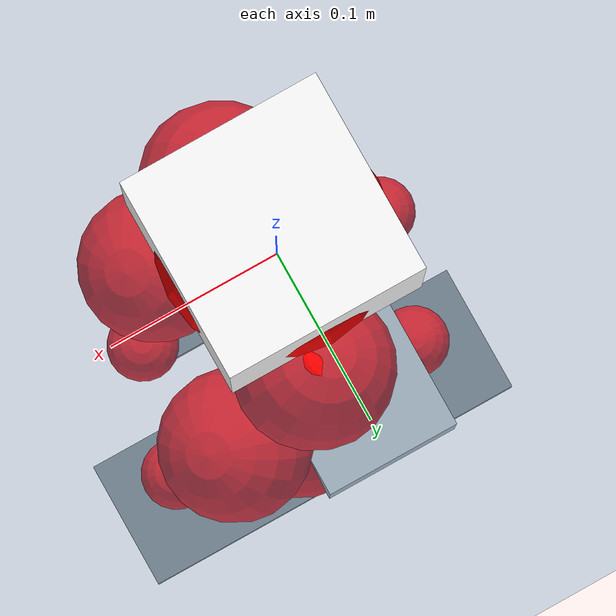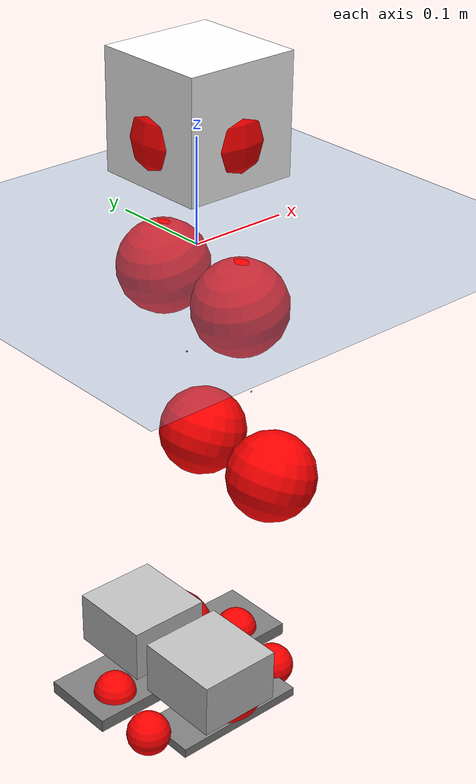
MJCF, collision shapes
<mujoco model="pi_12dof_release_v1">
  <compiler angle="radian" assetdir="assets" balanceinertia="true" inertiafromgeom="false"/>

  <option timestep="0.005" density="1.2" viscosity="2e-05"/>

  <size nkey="1"/>

  <visual>
    <quality shadowsize="8192"/>
    <map shadowclip="0.5"/>
  </visual>

  <default>
    <default class="/">
      <joint armature="0.01" damping="0.01" frictionloss="0.01"/>
      <geom contype="0" conaffinity="0" group="1" solref="-1000 -80"/>
      <site size="0.01 0.005 0.005" group="5"/>
      <general forcelimited="true" biastype="affine" gainprm="20" biasprm="0 -20 -0.5"/>
      <default class="foot">
        <geom size="0.0845 0.036 0.005" type="box" condim="6" group="4" priority="1" friction="0.9 0.2 0.2" solimp="0.015 1 0.005"/>
      </default>
      <default class="reward_collision_sphere">
        <geom group="5" rgba="1 0 0 1"/>
      </default>
    </default>
  </default>

  <asset>
    <texture type="skybox" colorspace="auto" name="//unnamed_texture_0" builtin="gradient" rgb1="0.95 0.95 0.95" rgb2="0.95 0.95 0.95" width="100" height="600"/>
    <texture type="2d" colorspace="auto" name="texplane" builtin="checker" rgb1="0.345 0.575 0.748" rgb2="0.345 0.575 0.748" markrgb="1 1 1" width="512" height="512"/>
    <material name="MatPlane" class="/" texture="texplane" texuniform="true" texrepeat="2 2" specular="0.9"/>
    <mesh name="baselink_1" class="/" file="baselink_1.STL"/>
    <mesh name="r_hip_pitch_link" class="/" file="r_hip_pitch_link.STL"/>
    <mesh name="r_hip_roll_link" class="/" file="r_hip_roll_link.STL"/>
    <mesh name="r_thigh_link" class="/" file="r_thigh_link.STL"/>
    <mesh name="r_calf_link" class="/" file="r_calf_link.STL"/>
    <mesh name="r_ankle_pitch_link" class="/" file="r_ankle_pitch_link.STL"/>
    <mesh name="r_ankle_roll_link" class="/" file="r_ankle_roll_link.STL"/>
    <mesh name="l_hip_pitch_link" class="/" file="l_hip_pitch_link.STL"/>
    <mesh name="l_hip_roll_link" class="/" file="l_hip_roll_link.STL"/>
    <mesh name="l_thigh_link" class="/" file="l_thigh_link.STL"/>
    <mesh name="l_calf_link" class="/" file="l_calf_link.STL"/>
    <mesh name="l_ankle_pitch_link" class="/" file="l_ankle_pitch_link.STL"/>
    <mesh name="l_ankle_roll_link" class="/" file="l_ankle_roll_link.STL"/>
  </asset>

  <worldbody>
    <geom name="floor" class="/" size="100 100 0.125" type="plane" group="0" material="MatPlane"/>
    <light name="toplight_shadow" class="/" pos="0 0 5" dir="0.0990148 0.0990148 -0.990148" type="directional" ambient="0.04 0.04 0.04" diffuse="0.55 0.55 0.55" specular="0.12 0.12 0.12"/>
    <light name="toplight_fill" class="/" pos="0 0 5" dir="0.0990148 0.0990148 -0.990148" type="directional" castshadow="false" ambient="0.04 0.04 0.04" diffuse="0.3 0.3 0.3" specular="0.08 0.08 0.08"/>
    <body name="trunk" pos="0.00213168 0.000726772 0.00271453" quat="0.999999 -0.000361779 0.000850909 0.000626329">
      <inertial pos="0.00680682 0.00508441 0.0600628" quat="0.693733 0.00685058 0.0120635 0.720099" mass="3.04832" diaginertia="0.0260174 0.000808635 0.0272615"/>
      <joint name="//unnamed_joint_0" type="free"/>
      <geom name="//unnamed_geom_1" class="/" type="mesh" density="0" rgba="1 1 1 1" mesh="baselink_1"/>
      <geom name="//unnamed_geom_2" class="/" size="0.0557515 0.0557515 0.0557515" pos="0 0 0.118786" type="box" rgba="1 1 1 1"/>
      <geom name="//unnamed_geom_3" class="reward_collision_sphere" size="0.0613267" pos="0 0 0.103938"/>
      <site name="imu" class="/" pos="0.0364027 -0.0112884 -0.0259656" size="0.0111503"/>
      <camera name="track" class="/" pos="0 -1.25315 0" quat="0.707107 0.707107 0 0" mode="trackcom"/>
      <camera name="ego_camera" class="/" pos="0.0925265 0 0.267269" quat="-0.5 -0.5 0.5 0.5"/>
      <body name="r_hip_pitch_link" pos="0.00232023 -0.0149295 -0.0490107" quat="0.992171 7.61447e-06 -0.124883 5.92727e-05">
        <inertial pos="-0.00424678 -0.034348 -0.00170943" quat="-0.0261714 0.705763 -0.0318008 0.70725" mass="0.539442" diaginertia="0.000327691 9.24684e-06 0.000596496"/>
        <joint name="r_hip_pitch_joint" class="/" pos="0 0 0" axis="-0.0355657 -0.999235 0.0162849" range="-1.75901 1.37229" armature="0.0112061" damping="0.0420975" frictionloss="0.0106582"/>
        <geom name="//unnamed_geom_4" class="/" type="mesh" density="0" rgba="0.75294 0.75294 0.75294 1" mesh="r_hip_pitch_link"/>
        <geom name="//unnamed_geom_5" class="/" size="0.000557515 0.000557515 0.000557515" type="box" rgba="0.75294 0.75294 0.75294 1"/>
        <body name="r_hip_roll_link" pos="0.00190114 -0.0375098 0.00140864" quat="1 -1.52879e-05 -3.36694e-05 -1.55507e-05">
          <inertial pos="-0.00159434 0.00023228 -0.0961327" quat="0.702801 -0.0745019 -0.0864745 0.70217" mass="0.539197" diaginertia="0.00104801 2.74356e-05 0.000923374"/>
          <joint name="r_hip_roll_joint" class="/" pos="0 0 0" axis="-0.999374 -0.0349152 0.00570969" range="-0.00975791 0.508281" armature="0.0109791" damping="0.00221826" frictionloss="0.00936314"/>
          <geom name="//unnamed_geom_6" class="/" type="mesh" density="0" rgba="0.75294 0.75294 0.75294 1" mesh="r_hip_roll_link"/>
          <geom name="//unnamed_geom_7" class="/" size="0.000557515 0.000557515 0.000557515" type="box" rgba="0.75294 0.75294 0.75294 1"/>
          <geom name="//unnamed_geom_8" class="reward_collision_sphere" size="0.0446012"/>
          <body name="r_thigh_link" pos="-0.00429684 0.00419638 -0.0955375" quat="0.999998 0.000482232 0.00203551 4.3186e-05">
            <inertial pos="-0.00088157 0.00214577 -0.0724626" quat="0.741716 0.670695 -0.000633356 -0.00500305" mass="0.155341" diaginertia="0.000363254 9.21307e-06 0.000413294"/>
            <joint name="r_thigh_joint" class="/" pos="0 0 0" axis="0.00623576 -0.00709489 -0.999955" range="-0.286655 0.602304" armature="0.0102726" damping="0.00395802" frictionloss="0.0123843"/>
            <geom name="//unnamed_geom_9" class="/" type="mesh" density="0" rgba="0.75294 0.75294 0.75294 1" mesh="r_thigh_link"/>
            <geom name="//unnamed_geom_10" class="/" size="0.000557515 0.000557515 0.000557515" type="box" rgba="0.75294 0.75294 0.75294 1"/>
            <body name="r_calf_link" pos="0.00229862 -0.000764749 -0.10603" quat="0.947707 0.00107976 0.31914 -0.000173029">
              <inertial pos="-0.00550956 -0.00126806 -0.102177" quat="0.999992 -0.000806373 0.00114095 0.00374946" mass="1.07762" diaginertia="0.00982999 0.000324539 0.00122131"/>
              <joint name="r_calf_joint" class="/" pos="0 0 0" axis="-0.0160715 -0.999835 0.00849729" stiffness="0.00172197" range="-1.69592 0.625597" armature="0.0125103" damping="0" frictionloss="0.0114583"/>
              <geom name="//unnamed_geom_11" class="/" type="mesh" density="0" rgba="0.75294 0.75294 0.75294 1" mesh="r_calf_link"/>
              <geom name="//unnamed_geom_12" class="/" size="0.000557515 0.000557515 0.000557515" type="box" rgba="0.75294 0.75294 0.75294 1"/>
              <geom name="//unnamed_geom_13" class="reward_collision_sphere" size="0.0446012"/>
              <body name="r_ankle_pitch_link" pos="0.000581187 -0.00590439 -0.207397" quat="0.980104 -0.000112063 -0.198484 -0.000302229">
                <inertial pos="0.00611798 0.00452476 -0.00235045" quat="-0.0121215 0.706195 -0.0219473 0.707573" mass="0.274592" diaginertia="0.000943085 2.18068e-05 0.000899822"/>
                <joint name="r_ankle_pitch_joint" class="/" pos="0 0 0" axis="0.00668203 -0.99994 0.00864566" stiffness="0.0128865" range="-1.33655 0.546396" armature="0.00990915" damping="0.0306881" frictionloss="0.0111065"/>
                <geom name="//unnamed_geom_14" class="/" type="mesh" density="0" rgba="0.75294 0.75294 0.75294 1" mesh="r_ankle_pitch_link"/>
                <geom name="//unnamed_geom_15" class="/" size="0.0434862 0.0446012 0.0278758" type="box" rgba="0.75294 0.75294 0.75294 1"/>
                <body name="r_ankle_roll_link" pos="0.0876867 0.00976306 -0.00020258" quat="1 0.000348556 -0.000530348 0.000385013">
                  <inertial pos="-0.0289725 -0.000758927 -0.0275019" quat="0.557434 0.437116 0.432799 0.557568" mass="0.704867" diaginertia="0.00354671 0.000105505 0.00210759"/>
                  <joint name="r_ankle_roll_joint" class="/" pos="0 0 0" axis="-0.999914 0.0107754 -0.00743775" stiffness="0.00942663" range="-0.105515 0.162178" armature="0.0117964" damping="0.031486" frictionloss="0.00845125"/>
                  <geom name="//unnamed_geom_16" class="/" type="mesh" density="0" rgba="0.75294 0.75294 0.75294 1" mesh="r_ankle_roll_link"/>
                  <geom name="//unnamed_geom_17" class="/" type="mesh" rgba="0.75294 0.75294 0.75294 1" mesh="r_ankle_roll_link"/>
                  <geom name="right_foot" class="foot" size="0.0729929 0.0290987 0.00492804" pos="-0.062918 0 -0.0653325"/>
                  <geom name="//unnamed_geom_19" class="reward_collision_sphere" size="0.0446012" pos="-0.0616844 0 -0.0296966"/>
                  <geom name="//unnamed_geom_20" class="reward_collision_sphere" size="0.0223006" pos="0.0185053 0.0125315 -0.0593932"/>
                  <geom name="//unnamed_geom_21" class="reward_collision_sphere" size="0.0223006" pos="-0.148042 0.0125315 -0.0593932"/>
                  <site name="right_foot" class="foot" pos="-0.062918 0 -0.0653325" size="0.0111503"/>
                </body>
              </body>
            </body>
          </body>
        </body>
      </body>
      <body name="l_hip_pitch_link" pos="0.00679632 0.0150042 -0.0475713" quat="0.99222 0.000238457 -0.124499 -0.000427444">
        <inertial pos="0.00107153 0.0282995 0.000897231" quat="-0.0332108 0.709962 0.0328372 0.70269" mass="0.547835" diaginertia="0.000384002 9.83085e-06 0.000819478"/>
        <joint name="l_hip_pitch_joint" class="/" pos="0 0 0" axis="0.0174636 0.999829 0.0060036" range="-1.13697 1.80705" armature="0.00752856" damping="0.0399305" frictionloss="0.0099554"/>
        <geom name="//unnamed_geom_22" class="/" type="mesh" density="0" rgba="0.75294 0.75294 0.75294 1" mesh="l_hip_pitch_link"/>
        <geom name="//unnamed_geom_23" class="/" size="0.000557515 0.000557515 0.000557515" type="box" rgba="0.75294 0.75294 0.75294 1"/>
        <body name="l_hip_roll_link" pos="0.00190281 0.0435714 -0.000195817" quat="1 3.77684e-05 4.13655e-05 -2.29465e-05">
          <inertial pos="-0.00179434 -0.00391217 -0.0932448" quat="0.695355 -0.0843046 -0.0791781 0.709299" mass="0.541016" diaginertia="0.000961623 2.74969e-05 0.00094653"/>
          <joint name="l_hip_roll_joint" class="/" pos="0 0 0" axis="-0.999391 -0.0175989 0.0301441" stiffness="0.00706688" range="-0.642238 0.0709548" armature="0.0122044" damping="0" frictionloss="0.0140434"/>
          <geom name="//unnamed_geom_24" class="/" type="mesh" density="0" rgba="0.75294 0.75294 0.75294 1" mesh="l_hip_roll_link"/>
          <geom name="//unnamed_geom_25" class="/" size="0.000557515 0.000557515 0.000557515" type="box" rgba="0.75294 0.75294 0.75294 1"/>
          <geom name="//unnamed_geom_26" class="reward_collision_sphere" size="0.0446012"/>
          <body name="l_thigh_link" pos="0.00201052 -0.00139629 -0.102412" quat="1 0.00015125 -1.1043e-05 -0.000132242">
            <inertial pos="0.000352778 -0.00118208 -0.0731682" quat="0.657147 0.753052 -0.00191369 0.0326743" mass="0.155583" diaginertia="0.000364927 9.38005e-06 0.000455576"/>
            <joint name="l_thigh_joint" class="/" pos="0 0 0" axis="0.000960794 0.00271576 -0.999996" range="-0.570538 0.256879" armature="0.0108233" damping="0.0294576" frictionloss="0.0100398"/>
            <geom name="//unnamed_geom_27" class="/" type="mesh" density="0" rgba="0.75294 0.75294 0.75294 1" mesh="l_thigh_link"/>
            <geom name="//unnamed_geom_28" class="/" size="0.000557515 0.000557515 0.000557515" type="box" rgba="0.75294 0.75294 0.75294 1"/>
            <body name="l_calf_link" pos="0.0005324 0.00551303 -0.103548" quat="0.947657 -0.00131806 0.319284 -0.0013569">
              <inertial pos="0.00622458 0.000860477 -0.108532" quat="0.999944 0.00415906 0.00727463 0.00650769" mass="1.13609" diaginertia="0.0101284 0.000341204 0.00137678"/>
              <joint name="l_calf_joint" class="/" pos="0 0 0" axis="0.000620454 1 9.07867e-05" range="-0.63876 1.81525" armature="0.0138491" damping="0.0111933" frictionloss="0.0141135"/>
              <geom name="//unnamed_geom_29" class="/" type="mesh" density="0" rgba="0.75294 0.75294 0.75294 1" mesh="l_calf_link"/>
              <geom name="//unnamed_geom_30" class="/" size="0.000557515 0.000557515 0.000557515" type="box" rgba="0.75294 0.75294 0.75294 1"/>
              <geom name="//unnamed_geom_31" class="reward_collision_sphere" size="0.0446012"/>
              <body name="l_ankle_pitch_link" pos="0.00164294 7.6224e-05 -0.213943" quat="0.980052 -0.000928501 -0.198738 -0.000250712">
                <inertial pos="0.00294948 -0.00276703 0.00171996" quat="-0.00210141 0.707054 0.00218552 0.707153" mass="0.290625" diaginertia="0.00102232 2.39193e-05 0.000972396"/>
                <joint name="l_ankle_pitch_joint" class="/" pos="0 0 0" axis="0.0163198 0.999842 -0.0070231" stiffness="0.00083927" range="-0.5263 1.27038" armature="0.010947" damping="0.0218168" frictionloss="0.00654418"/>
                <geom name="//unnamed_geom_32" class="/" type="mesh" density="0" rgba="0.75294 0.75294 0.75294 1" mesh="l_ankle_pitch_link"/>
                <geom name="//unnamed_geom_33" class="/" size="0.0434862 0.0446012 0.0278758" type="box" rgba="0.75294 0.75294 0.75294 1"/>
                <body name="l_ankle_roll_link" pos="0.0982712 -0.00304315 0.00114394" quat="1 0.000249142 -0.000169245 0.000118189">
                  <inertial pos="-0.0302116 8.8816e-05 -0.0201984" quat="0.557497 0.431771 0.416833 0.573603" mass="0.758125" diaginertia="0.00336825 9.66054e-05 0.00213532"/>
                  <joint name="l_ankle_roll_joint" class="/" pos="0 0 0" axis="-0.999928 -0.0119675 0.00123993" stiffness="0.00667666" range="-0.145476 0.147214" armature="0.0105234" damping="0.0154421" frictionloss="0.0148722"/>
                  <geom name="//unnamed_geom_34" class="/" type="mesh" density="0" rgba="0.75294 0.75294 0.75294 1" mesh="l_ankle_roll_link"/>
                  <geom name="//unnamed_geom_35" class="/" type="mesh" rgba="0.75294 0.75294 0.75294 1" mesh="l_ankle_roll_link"/>
                  <geom name="left_foot" class="foot" size="0.124293 0.0410366 0.00680747" pos="-0.062918 0 -0.0653325"/>
                  <geom name="//unnamed_geom_37" class="reward_collision_sphere" size="0.0446012" pos="-0.0616844 0 -0.0296966"/>
                  <geom name="//unnamed_geom_38" class="reward_collision_sphere" size="0.0223006" pos="0.0185053 -0.0125315 -0.0593932"/>
                  <geom name="//unnamed_geom_39" class="reward_collision_sphere" size="0.0223006" pos="-0.148042 -0.0125315 -0.0593932"/>
                  <site name="left_foot" class="foot" pos="-0.062918 0 -0.0653325" size="0.0111503"/>
                </body>
              </body>
            </body>
          </body>
        </body>
      </body>
    </body>
  </worldbody>

  <contact>
    <pair class="/" geom1="floor" geom2="right_foot" name="//unnamed_contact_1"/>
    <pair class="/" geom1="floor" geom2="left_foot" name="//unnamed_contact_0"/>
  </contact>

  <actuator>
    <general name="r_hip_pitch_joint" class="/" joint="r_hip_pitch_joint" forcerange="-24.1693 24.1693" gainprm="21.3424" biasprm="0 -21.3424 -0.489742"/>
    <general name="r_hip_roll_joint" class="/" joint="r_hip_roll_joint" forcerange="-27.3691 27.3691" gainprm="21.3424" biasprm="0 -21.3424 -0.489742"/>
    <general name="r_thigh_joint" class="/" joint="r_thigh_joint" forcerange="-20.4934 20.4934" gainprm="21.3424" biasprm="0 -21.3424 -0.489742"/>
    <general name="r_calf_joint" class="/" joint="r_calf_joint" forcerange="-22.5069 22.5069" gainprm="21.3424" biasprm="0 -21.3424 -0.489742"/>
    <general name="r_ankle_pitch_joint" class="/" joint="r_ankle_pitch_joint" forcerange="-27.129 27.129" gainprm="21.3424" biasprm="0 -21.3424 -0.489742"/>
    <general name="r_ankle_roll_joint" class="/" joint="r_ankle_roll_joint" forcerange="-23.9523 23.9523" gainprm="21.3424" biasprm="0 -21.3424 -0.489742"/>
    <general name="l_hip_pitch_joint" class="/" joint="l_hip_pitch_joint" forcerange="-21.6862 21.6862" gainprm="21.3424" biasprm="0 -21.3424 -0.489742"/>
    <general name="l_hip_roll_joint" class="/" joint="l_hip_roll_joint" forcerange="-24.628 24.628" gainprm="21.3424" biasprm="0 -21.3424 -0.489742"/>
    <general name="l_thigh_joint" class="/" joint="l_thigh_joint" forcerange="-21.9814 21.9814" gainprm="21.3424" biasprm="0 -21.3424 -0.489742"/>
    <general name="l_calf_joint" class="/" joint="l_calf_joint" forcerange="-25.0599 25.0599" gainprm="21.3424" biasprm="0 -21.3424 -0.489742"/>
    <general name="l_ankle_pitch_joint" class="/" joint="l_ankle_pitch_joint" forcerange="-23.1996 23.1996" gainprm="21.3424" biasprm="0 -21.3424 -0.489742"/>
    <general name="l_ankle_roll_joint" class="/" joint="l_ankle_roll_joint" forcerange="-27.8002 27.8002" gainprm="21.3424" biasprm="0 -21.3424 -0.489742"/>
  </actuator>

  <sensor>
    <gyro site="imu" name="imu_angular_velocity"/>
    <velocimeter site="imu" name="imu_linear_velocity"/>
    <framelinvel objtype="site" objname="left_foot" name="left_foot_global_linear_velocity"/>
    <framelinvel objtype="site" objname="right_foot" name="right_foot_global_linear_velocity"/>
  </sensor>

  <keyframe>
    <key name="home" qpos="0 0 0.291 1 0 0 0 0.4 0 0 -0.8 0.4 0 -0.4 0 0 0.8 -0.4 0"/>
  </keyframe>
</mujoco>
